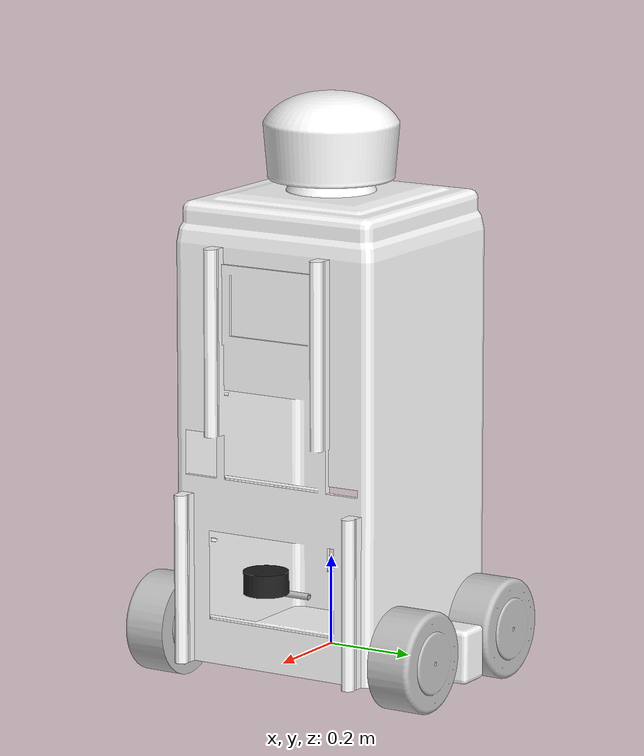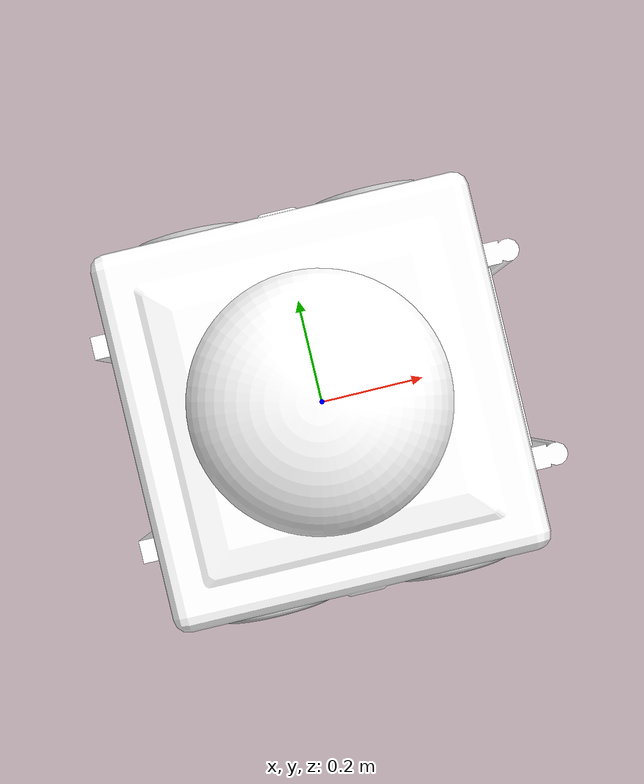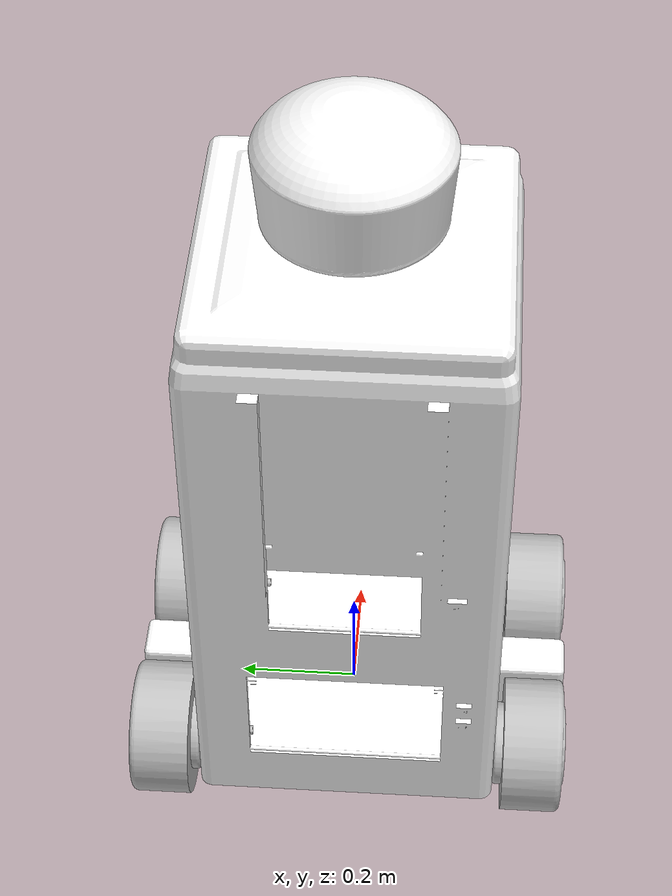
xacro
<?xml version="1.0" encoding="utf-8"?>
<robot
  name="robot_description5">
  <link
    name="base_link">
    <inertial>
      <origin
        xyz="0.018890542943976 -0.000142023972111771 0.39945800630367"
        rpy="0 0 0" />
      <mass
        value="0.2370067602234" />
      <inertia
        ixx="3.41733986861111"
        ixy="-0.000493085481469591"
        ixz="-0.0230664579940298"
        iyy="3.19314565985515"
        iyz="-0.000545981635449765"
        izz="1.85246829458927" />
    </inertial>
    <visual>
      <origin
        xyz="0 0 0"
        rpy="0 0 0" />
      <geometry>
        <mesh
          filename="package://robot_description5/meshes/base_link.STL" />
      </geometry>
      <material
        name="">
        <color
          rgba="1 1 1 1" />
      </material>
    </visual>
    <collision>
      <origin
        xyz="0 0 0"
        rpy="0 0 0" />
      <geometry>
        <mesh
          filename="package://robot_description5/meshes/base_link.STL" />
      </geometry>
    </collision>
  </link>
  <link
    name="Wheel_lb_Link">
    <inertial>
      <origin
        xyz="-8.32667268468867E-17 0.0022127176247605 0"
        rpy="0 0 0" />
      <mass
        value="0.0467807531290496" />
      <inertia
        ixx="0.0181551617250659"
        ixy="6.50521303491303E-19"
        ixz="-8.13638808278216E-22"
        iyy="0.0267269473605868"
        iyz="2.59069752656668E-19"
        izz="0.0181551617250659" />
    </inertial>
    <visual>
      <origin
        xyz="0 0 0"
        rpy="0 0 0" />
      <geometry>
        <mesh
          filename="package://robot_description5/meshes/Wheel_lb_Link.STL" />
      </geometry>
      <material
        name="">
        <color
          rgba="0.752941176470588 0.752941176470588 0.752941176470588 1" />
      </material>
    </visual>
    <collision>
      <origin
        xyz="0 0 0"
        rpy="0 0 0" />
      <geometry>
        <mesh
          filename="package://robot_description5/meshes/Wheel_lb_Link.STL" />
      </geometry>
    </collision>
  </link>
  <joint
    name="Wheel_lb_Joint"
    type="continuous">
    <origin
      xyz="-0.17 0.31 0.0450000000000002"
      rpy="0 0 0" />
    <parent
      link="base_link" />
    <child
      link="Wheel_lb_Link" />
    <axis
      xyz="0 -1 0" />
  </joint>
  <link
    name="Wheel_lf_Link">
    <inertial>
      <origin
        xyz="0.1125 0.00221271762476039 1.11022302462516E-16"
        rpy="0 0 0" />
      <mass
        value="0.0467807531290496" />
      <inertia
        ixx="0.0181551617250659"
        ixy="1.95156391047391E-18"
        ixz="-8.1363880827783E-22"
        iyy="0.0267269473605868"
        iyz="2.5906975265667E-19"
        izz="0.0181551617250659" />
    </inertial>
    <visual>
      <origin
        xyz="0 0 0"
        rpy="0 0 0" />
      <geometry>
        <mesh
          filename="package://robot_description5/meshes/Wheel_lf_Link.STL" />
      </geometry>
      <material
        name="">
        <color
          rgba="0.752941176470588 0.752941176470588 0.752941176470588 1" />
      </material>
    </visual>
    <collision>
      <origin
        xyz="0 0 0"
        rpy="0 0 0" />
      <geometry>
        <mesh
          filename="package://robot_description5/meshes/Wheel_lf_Link.STL" />
      </geometry>
    </collision>
  </link>
  <joint
    name="Wheel_lf_Joint"
    type="continuous">
    <origin
      xyz="0.0575 0.31 0.045"
      rpy="0 0 0" />
    <parent
      link="base_link" />
    <child
      link="Wheel_lf_Link" />
    <axis
      xyz="0 -1 0" />
  </joint>
  <link
    name="Wheel_rb_Link">
    <inertial>
      <origin
        xyz="0 -0.00221271762476044 1.11022302462516E-16"
        rpy="0 0 0" />
      <mass
        value="0.0467807531290496" />
      <inertia
        ixx="0.0181551617250659"
        ixy="-2.16840434497101E-18"
        ixz="-3.76901499006041E-19"
        iyy="0.0267269473605868"
        iyz="3.09373401857912E-20"
        izz="0.0181551617250659" />
    </inertial>
    <visual>
      <origin
        xyz="0 0 0"
        rpy="0 0 0" />
      <geometry>
        <mesh
          filename="package://robot_description5/meshes/Wheel_rb_Link.STL" />
      </geometry>
      <material
        name="">
        <color
          rgba="0.752941176470588 0.752941176470588 0.752941176470588 1" />
      </material>
    </visual>
    <collision>
      <origin
        xyz="0 0 0"
        rpy="0 0 0" />
      <geometry>
        <mesh
          filename="package://robot_description5/meshes/Wheel_rb_Link.STL" />
      </geometry>
    </collision>
  </link>
  <joint
    name="Wheel_rb_Joint"
    type="continuous">
    <origin
      xyz="-0.17 -0.31 0.0449999999999999"
      rpy="0 0 0" />
    <parent
      link="base_link" />
    <child
      link="Wheel_rb_Link" />
    <axis
      xyz="0 -1 0" />
  </joint>
  <link
    name="Wheel_rf_link">
    <inertial>
      <origin
        xyz="2.77555756156289E-17 -0.00221271762476044 -1.11022302462516E-16"
        rpy="0 0 0" />
      <mass
        value="0.0467807531290496" />
      <inertia
        ixx="0.0181551617250659"
        ixy="6.50521303491303E-19"
        ixz="-3.97440697321938E-18"
        iyy="0.0267269473605868"
        iyz="-4.69696288073333E-19"
        izz="0.0181551617250659" />
    </inertial>
    <visual>
      <origin
        xyz="0 0 0"
        rpy="0 0 0" />
      <geometry>
        <mesh
          filename="package://robot_description5/meshes/Wheel_rf_link.STL" />
      </geometry>
      <material
        name="">
        <color
          rgba="0.752941176470588 0.752941176470588 0.752941176470588 1" />
      </material>
    </visual>
    <collision>
      <origin
        xyz="0 0 0"
        rpy="0 0 0" />
      <geometry>
        <mesh
          filename="package://robot_description5/meshes/Wheel_rf_link.STL" />
      </geometry>
    </collision>
  </link>
  <joint
    name="Wheel_rf_joint"
    type="continuous">
    <origin
      xyz="0.17 -0.31 0.0450000000000002"
      rpy="0 0 0" />
    <parent
      link="base_link" />
    <child
      link="Wheel_rf_link" />
    <axis
      xyz="0 -1 0" />
  </joint>
  <link
    name="Head_Link">
    <inertial>
      <origin
        xyz="2.79731433176084E-06 -5.80152703891224E-07 0.0078643650529755"
        rpy="0 0 0" />
      <mass
        value="0.0461197953885854" />
      <inertia
        ixx="0.0527239825675312"
        ixy="8.00596326764116E-06"
        ixz="-1.88257809366352E-06"
        iyy="0.0527609244034292"
        iyz="3.90439772496413E-07"
        izz="0.0641569669630147" />
    </inertial>
    <visual>
      <origin
        xyz="0 0 0"
        rpy="0 0 0" />
      <geometry>
        <mesh
          filename="package://robot_description5/meshes/Head_Link.STL" />
      </geometry>
      <material
        name="">
        <color
          rgba="1 1 1 1" />
      </material>
    </visual>
    <collision>
      <origin
        xyz="0 0 0"
        rpy="0 0 0" />
      <geometry>
        <mesh
          filename="package://robot_description5/meshes/Head_Link.STL" />
      </geometry>
    </collision>
  </link>
  <joint
    name="Head_Joint"
    type="fixed">
    <origin
      xyz="0 0 1.11745148448196"
      rpy="0 0 0" />
    <parent
      link="base_link" />
    <child
      link="Head_Link" />
    <axis
      xyz="0 0 1" />
  </joint>

    <link name="laser_link">
        <inertial>
            <mass value="0.001" />
            <origin xyz="0 0 0" />
            <inertia ixx="0.01" ixy="0.0" ixz="0.0"
                        iyy="0.01" iyz="0.0"
                        izz="0.01" />
        </inertial>

        <visual>
            <origin xyz=" 0 0 0 " rpy="0 0 0" />
            <geometry>
                <cylinder length="0.05" radius="0.05"/>
            </geometry>
            <material name="black"/>
        </visual>

        <collision>
            <origin xyz="0.0 0.0 0.0" rpy="0 0 0" />
            <geometry>
                <cylinder length="0.05" radius="0.05"/>
            </geometry>
        </collision>
    </link>
    <gazebo reference="laser_link">
        <material>Gazebo/Grey</material>
    </gazebo>

    <gazebo reference="laser_link">
        <sensor type="ray" name="rplidar">
            <pose>0 0 0 0 0 0</pose>
            <visualize>false</visualize>
            <update_rate>40</update_rate>
            <ray>
                <scan>
                    <horizontal>
                    <samples>360</samples>
                    <resolution>1</resolution>
                    <min_angle>-1.40</min_angle>
                    <max_angle>1.40</max_angle>
                    </horizontal>
                </scan>
                <range>
                    <min>0.10</min>
                    <max>30.0</max>
                    <resolution>0.01</resolution>
                </range>
                <noise>
                    <type>gaussian</type>
                    <mean>0.0</mean>
                    <stddev>0.01</stddev>
                </noise>
            </ray>
            <plugin name="gazebo_rplidar" filename="libgazebo_ros_laser.so">
                <topicName>/scan</topicName>
                <frameName>laser_link</frameName>
            </plugin>
        </sensor>
    </gazebo>

	<joint name="rplidar_joint" type="fixed">
		<origin xyz="0.27 0.0 0.20" rpy="0 0 0" />
		<parent link="base_link"/>
		<child link="laser_link"/>
	</joint>

  <gazebo>
    <plugin name="mbot_drive_controller" filename="libgazebo_ros_planar_move.so">
        <commandTopic>cmd_vel</commandTopic>
        <odometryTopic>odom</odometryTopic>
        <odometryFrame>odom</odometryFrame>
        <odometryRate>50</odometryRate>
        <robotBaseFrame>base_link</robotBaseFrame>
    </plugin>
  </gazebo>

</robot>
